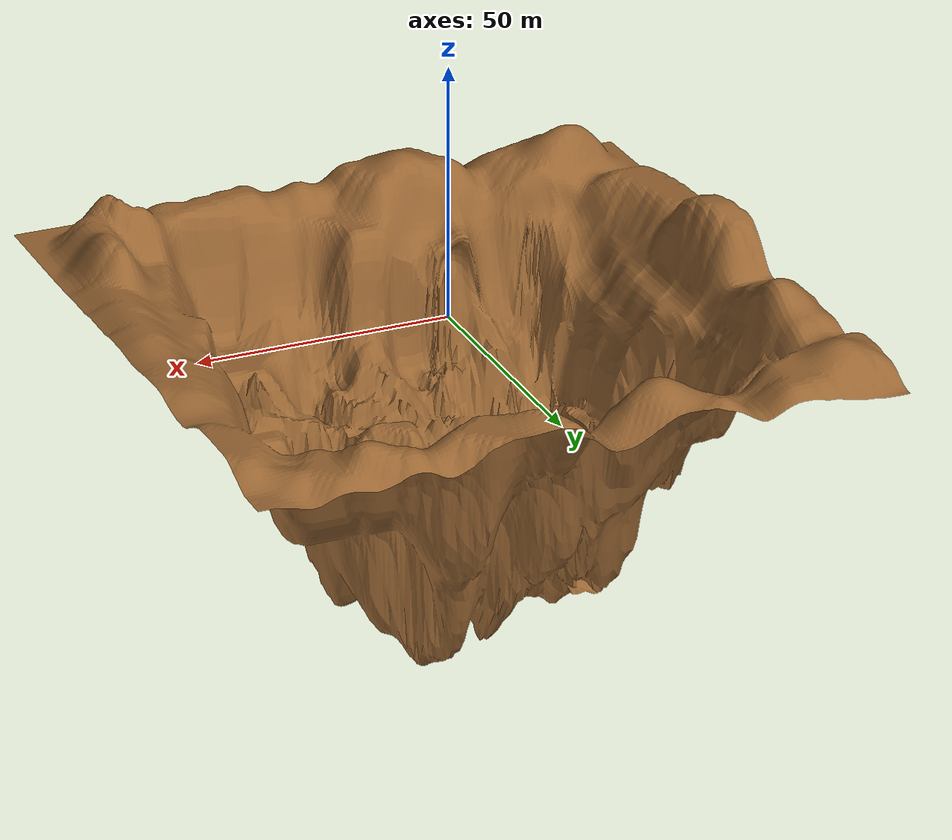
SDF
<?xml version="1.0"?>
<sdf version="1.6">
  <model name="my_fixed_model">
    <static>true</static>
    <!-- default pose (override when including in world) -->
    <pose>0 0 0 0 0 0</pose>

    <link name="link">
      <visual name="visual">
        <geometry>
          <mesh>
            <uri>model://envarment/meshes/la.stl</uri>
            <scale>1 1 1</scale>
          </mesh>
        </geometry>

          <material>
            <ambient>0.6 0.4 0.2 1</ambient>
            <diffuse>0.6 0.4 0.2 1</diffuse>
            <specular>0.1 0.1 0.1 1</specular>
          </material>

      </visual>

      <collision name="collision">
        <geometry>
          <mesh>
            <uri>model://envarment/meshes/la.stl</uri>
            <scale>1 1 1</scale>
          </mesh>
        </geometry>
      </collision>
    </link>
  </model>
</sdf>
